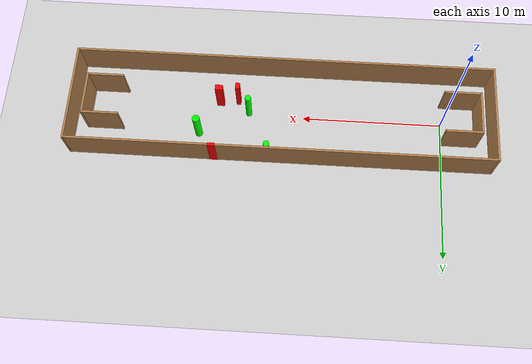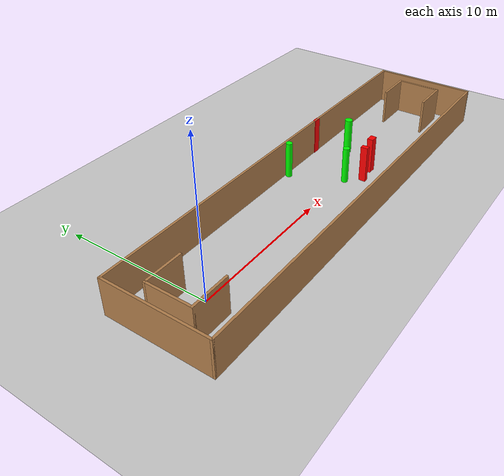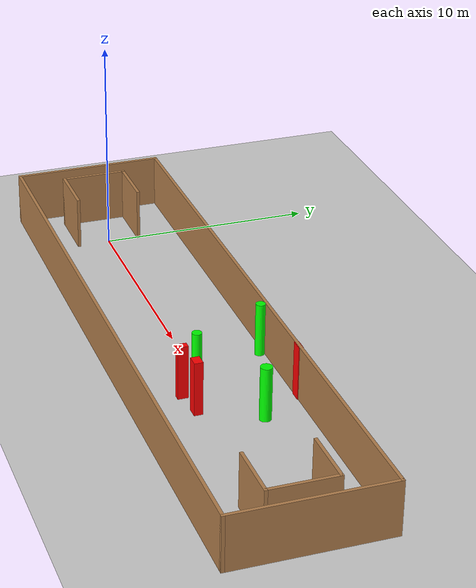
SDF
<sdf version="1.7">
 <world name="default">
  <light name="sun" type="directional">
   <pose>0 0 10 0 -0 0</pose>
   <diffuse>0.8 0.8 0.8 1</diffuse>
   <specular>0.2 0.2 0.2 1</specular>
   <attenuation>
    <range>1000</range>
    <constant>0.9</constant>
    <linear>0.01</linear>
    <quadratic>0.001</quadratic>
   </attenuation>
   <direction>-0.5 0.1 -0.9</direction>
   <spot><inner_angle>0</inner_angle><outer_angle>0</outer_angle><falloff>0</falloff></spot>
  </light>
  <model name="ground_plane">
   <static>1</static>
   <link name="link">
    <collision name="collision">
     <geometry><plane><normal>0 0 1</normal><size>100 100</size></plane></geometry>
     <surface>
      <contact><collide_bitmask>65535</collide_bitmask></contact>
      <friction><ode><mu>100</mu><mu2>50</mu2></ode></friction>
     </surface>
    </collision>
    <visual name="visual">
     <cast_shadows>0</cast_shadows>
     <geometry><plane><normal>0 0 1</normal><size>100 100</size></plane></geometry>
     <material>
      <script><uri>file://media/materials/scripts/gazebo.material</uri><name>Gazebo/Grey</name></script>
     </material>
    </visual>
   </link>
  </model>
  <gravity>0 0 -9.8</gravity>
  <magnetic_field>6e-06 2.3e-05 -4.2e-05</magnetic_field>
  <atmosphere type="adiabatic"/>
  <physics type="ode">
   <max_step_size>0.001</max_step_size>
   <real_time_factor>1</real_time_factor>
   <real_time_update_rate>1000</real_time_update_rate>
  </physics>
  <scene><ambient>0.4 0.4 0.4 1</ambient><background>0.7 0.7 0.7 1</background><shadows>1</shadows></scene>
  <spherical_coordinates>
   <surface_model>EARTH_WGS84</surface_model>
   <latitude_deg>0</latitude_deg>
   <longitude_deg>0</longitude_deg>
   <elevation>0</elevation>
   <heading_deg>0</heading_deg>
  </spherical_coordinates>
  <model name="my_base_walls">
   <link name="Wall_0">
    <collision name="Wall_0_Collision">
     <geometry><box><size>7.15 0.15 2.5</size></box></geometry>
     <pose>0 0 1.25 0 -0 0</pose>
    </collision>
    <visual name="Wall_0_Visual">
     <pose>0 0 1.25 0 -0 0</pose>
     <geometry><box><size>7.15 0.15 2.5</size></box></geometry>
     <material>
      <script><uri>file://media/materials/scripts/gazebo.material</uri><name>Gazebo/Wood</name></script>
      <ambient>1 1 1 1</ambient>
     </material>
     <meta><layer>0</layer></meta>
    </visual>
    <pose>-15 0 0 0 -0 1.5708</pose>
   </link>
   <link name="Wall_10">
    <collision name="Wall_10_Collision">
     <geometry><box><size>2.65 0.15 2.5</size></box></geometry>
     <pose>0 0 1.25 0 -0 0</pose>
    </collision>
    <visual name="Wall_10_Visual">
     <pose>0 0 1.25 0 -0 0</pose>
     <geometry><box><size>2.65 0.15 2.5</size></box></geometry>
     <material>
      <script><uri>file://media/materials/scripts/gazebo.material</uri><name>Gazebo/Wood</name></script>
      <ambient>1 1 1 1</ambient>
     </material>
     <meta><layer>0</layer></meta>
    </visual>
    <pose>-12.75 -1.5 0 0 -0 0</pose>
   </link>
   <link name="Wall_12">
    <collision name="Wall_12_Collision">
     <geometry><box><size>2.65 0.15 2.5</size></box></geometry>
     <pose>0 0 1.25 0 -0 0</pose>
    </collision>
    <visual name="Wall_12_Visual">
     <pose>0 0 1.25 0 -0 0</pose>
     <geometry><box><size>2.65 0.15 2.5</size></box></geometry>
     <material>
      <script><uri>file://media/materials/scripts/gazebo.material</uri><name>Gazebo/Wood</name></script>
      <ambient>1 1 1 1</ambient>
     </material>
     <meta><layer>0</layer></meta>
    </visual>
    <pose>-12.75 1.5 0 0 -0 0</pose>
   </link>
   <link name="Wall_14">
    <collision name="Wall_14_Collision">
     <geometry><box><size>3.15 0.15 2.5</size></box></geometry>
     <pose>0 0 1.25 0 -0 0</pose>
    </collision>
    <visual name="Wall_14_Visual">
     <pose>0 0 1.25 0 -0 0</pose>
     <geometry><box><size>3.15 0.15 2.5</size></box></geometry>
     <material>
      <script><uri>file://media/materials/scripts/gazebo.material</uri><name>Gazebo/Wood</name></script>
      <ambient>1 1 1 1</ambient>
     </material>
     <meta><layer>0</layer></meta>
    </visual>
    <pose>14 0 0 0 -0 -1.5708</pose>
   </link>
   <link name="Wall_15">
    <collision name="Wall_15_Collision">
     <geometry><box><size>2.65 0.15 2.5</size></box></geometry>
     <pose>0 0 1.25 0 -0 0</pose>
    </collision>
    <visual name="Wall_15_Visual">
     <pose>0 0 1.25 0 -0 0</pose>
     <geometry><box><size>2.65 0.15 2.5</size></box></geometry>
     <material>
      <script><uri>file://media/materials/scripts/gazebo.material</uri><name>Gazebo/Wood</name></script>
      <ambient>1 1 1 1</ambient>
     </material>
     <meta><layer>0</layer></meta>
    </visual>
    <pose>12.75 -1.5 0 0 -0 3.14159</pose>
   </link>
   <link name="Wall_17">
    <collision name="Wall_17_Collision">
     <geometry><box><size>2.65 0.15 2.5</size></box></geometry>
     <pose>0 0 1.25 0 -0 0</pose>
    </collision>
    <visual name="Wall_17_Visual">
     <pose>0 0 1.25 0 -0 0</pose>
     <geometry><box><size>2.65 0.15 2.5</size></box></geometry>
     <material>
      <script><uri>file://media/materials/scripts/gazebo.material</uri><name>Gazebo/Wood</name></script>
      <ambient>1 1 1 1</ambient>
     </material>
     <meta><layer>0</layer></meta>
    </visual>
    <pose>12.75 1.5 0 0 -0 3.14159</pose>
   </link>
   <link name="Wall_2">
    <collision name="Wall_2_Collision">
     <geometry><box><size>30.15 0.15 2.5</size></box></geometry>
     <pose>0 0 1.25 0 -0 0</pose>
    </collision>
    <visual name="Wall_2_Visual">
     <pose>0 0 1.25 0 -0 0</pose>
     <geometry><box><size>30.15 0.15 2.5</size></box></geometry>
     <material>
      <script><uri>file://media/materials/scripts/gazebo.material</uri><name>Gazebo/Wood</name></script>
      <ambient>1 1 1 1</ambient>
     </material>
     <meta><layer>0</layer></meta>
    </visual>
    <pose>-0 -3.5 0 0 -0 0</pose>
   </link>
   <link name="Wall_4">
    <collision name="Wall_4_Collision">
     <geometry><box><size>30.15 0.15 2.5</size></box></geometry>
     <pose>0 0 1.25 0 -0 0</pose>
    </collision>
    <visual name="Wall_4_Visual">
     <pose>0 0 1.25 0 -0 0</pose>
     <geometry><box><size>30.15 0.15 2.5</size></box></geometry>
     <material>
      <script><uri>file://media/materials/scripts/gazebo.material</uri><name>Gazebo/Wood</name></script>
      <ambient>1 1 1 1</ambient>
     </material>
     <meta><layer>0</layer></meta>
    </visual>
    <pose>-0 3.5 0 0 -0 0</pose>
   </link>
   <link name="Wall_6">
    <collision name="Wall_6_Collision">
     <geometry><box><size>7.15 0.15 2.5</size></box></geometry>
     <pose>0 0 1.25 0 -0 0</pose>
    </collision>
    <visual name="Wall_6_Visual">
     <pose>0 0 1.25 0 -0 0</pose>
     <geometry><box><size>7.15 0.15 2.5</size></box></geometry>
     <material>
      <script><uri>file://media/materials/scripts/gazebo.material</uri><name>Gazebo/Wood</name></script>
      <ambient>1 1 1 1</ambient>
     </material>
     <meta><layer>0</layer></meta>
    </visual>
    <pose>15 0 0 0 -0 -1.5708</pose>
   </link>
   <link name="Wall_9">
    <collision name="Wall_9_Collision">
     <geometry><box><size>3.15 0.15 2.5</size></box></geometry>
     <pose>0 0 1.25 0 -0 0</pose>
    </collision>
    <visual name="Wall_9_Visual">
     <pose>0 0 1.25 0 -0 0</pose>
     <geometry><box><size>3.15 0.15 2.5</size></box></geometry>
     <material>
      <script><uri>file://media/materials/scripts/gazebo.material</uri><name>Gazebo/Wood</name></script>
      <ambient>1 1 1 1</ambient>
     </material>
     <meta><layer>0</layer></meta>
    </visual>
    <pose>-14 0 0 0 -0 -1.5708</pose>
   </link>
   <static>1</static>
   <pose>11.5 0 0 0 -0 0</pose>
  </model>
  <model name="cylinder1">
   <static>1</static>
   <link name="link">
    <inertial>
     <mass>1</mass>
     <inertia><ixx>0.5</ixx><ixy>0</ixy><ixz>0</ixz><iyy>0.5</iyy><iyz>0</iyz><izz>1</izz></inertia>
    </inertial>
    <collision name="collision">
     <geometry><cylinder><radius>0.2191075418159275</radius><length>2.5</length></cylinder></geometry>
    </collision>
    <visual name="visual">
     <geometry><cylinder><radius>0.2191075418159275</radius><length>2.5</length></cylinder></geometry>
     <material>
      <ambient>0 1 0 1</ambient>
      <diffuse>0 1 0 1</diffuse>
      <specular>0.1 0.1 0.1 1</specular>
      <emissive>0 0 0 0</emissive>
     </material>
    </visual>
   </link>
   <pose>13.939356982473813 -0.19408033255316148 1.25 0 0 0</pose>
  </model>
  <model name="cylinder2">
   <static>1</static>
   <link name="link">
    <inertial>
     <mass>1</mass>
     <inertia><ixx>0.5</ixx><ixy>0</ixy><ixz>0</ixz><iyy>0.5</iyy><iyz>0</iyz><izz>1</izz></inertia>
    </inertial>
    <collision name="collision">
     <geometry><cylinder><radius>0.26392177466083716</radius><length>2.5</length></cylinder></geometry>
    </collision>
    <visual name="visual">
     <geometry><cylinder><radius>0.26392177466083716</radius><length>2.5</length></cylinder></geometry>
     <material>
      <ambient>0 1 0 1</ambient>
      <diffuse>0 1 0 1</diffuse>
      <specular>0.1 0.1 0.1 1</specular>
      <emissive>0 0 0 0</emissive>
     </material>
    </visual>
   </link>
   <pose>17.443744702581164 1.5963434678815016 1.25 0 0 0</pose>
  </model>
  <model name="cylinder3">
   <static>1</static>
   <link name="link">
    <inertial>
     <mass>1</mass>
     <inertia><ixx>0.5</ixx><ixy>0</ixy><ixz>0</ixz><iyy>0.5</iyy><iyz>0</iyz><izz>1</izz></inertia>
    </inertial>
    <collision name="collision">
     <geometry><cylinder><radius>0.21733999804706733</radius><length>2.5</length></cylinder></geometry>
    </collision>
    <visual name="visual">
     <geometry><cylinder><radius>0.21733999804706733</radius><length>2.5</length></cylinder></geometry>
     <material>
      <ambient>0 1 0 1</ambient>
      <diffuse>0 1 0 1</diffuse>
      <specular>0.1 0.1 0.1 1</specular>
      <emissive>0 0 0 0</emissive>
     </material>
    </visual>
   </link>
   <pose>12.430761402980881 3.2206439287029243 1.25 0 0 0</pose>
  </model>
  <model name="box1">
   <static>1</static>
   <link name="link">
    <inertial>
     <mass>1</mass>
     <inertia><ixx>0.083</ixx><ixy>0</ixy><ixz>0</ixz><iyy>0.083</iyy><iyz>0</iyz><izz>0.083</izz></inertia>
    </inertial>
    <collision name="collision">
     <geometry><box><size>0.3026601577093541 0.46841943976680706 2.5</size></box></geometry>
    </collision>
    <visual name="visual">
     <geometry><box><size>0.3026601577093541 0.46841943976680706 2.5</size></box></geometry>
     <material>
      <ambient>1 0 0 1</ambient>
      <diffuse>1 0 0 1</diffuse>
      <specular>0.1 0.1 0.1 1</specular>
      <emissive>0 0 0 0</emissive>
     </material>
    </visual>
    <sensor name="my_contact" type="contact">
     <contact><collision>box_collision</collision><topic>__default_topic__</topic></contact>
    </sensor>
   </link>
   <pose>14.749215154024457 -1.118727666341242 1.25 0 0 0</pose>
  </model>
  <model name="box2">
   <static>1</static>
   <link name="link">
    <inertial>
     <mass>1</mass>
     <inertia><ixx>0.083</ixx><ixy>0</ixy><ixz>0</ixz><iyy>0.083</iyy><iyz>0</iyz><izz>0.083</izz></inertia>
    </inertial>
    <collision name="collision">
     <geometry><box><size>0.5429788799799133 0.20503703843331034 2.5</size></box></geometry>
    </collision>
    <visual name="visual">
     <geometry><box><size>0.5429788799799133 0.20503703843331034 2.5</size></box></geometry>
     <material>
      <ambient>1 0 0 1</ambient>
      <diffuse>1 0 0 1</diffuse>
      <specular>0.1 0.1 0.1 1</specular>
      <emissive>0 0 0 0</emissive>
     </material>
    </visual>
    <sensor name="my_contact" type="contact">
     <contact><collision>box_collision</collision><topic>__default_topic__</topic></contact>
    </sensor>
   </link>
   <pose>16.207386428558973 3.490016939986794 1.25 0 0 0</pose>
  </model>
  <model name="box3">
   <static>1</static>
   <link name="link">
    <inertial>
     <mass>1</mass>
     <inertia><ixx>0.083</ixx><ixy>0</ixy><ixz>0</ixz><iyy>0.083</iyy><iyz>0</iyz><izz>0.083</izz></inertia>
    </inertial>
    <collision name="collision">
     <geometry><box><size>0.5294114336308032 0.39356694716705215 2.5</size></box></geometry>
    </collision>
    <visual name="visual">
     <geometry><box><size>0.5294114336308032 0.39356694716705215 2.5</size></box></geometry>
     <material>
      <ambient>1 0 0 1</ambient>
      <diffuse>1 0 0 1</diffuse>
      <specular>0.1 0.1 0.1 1</specular>
      <emissive>0 0 0 0</emissive>
     </material>
    </visual>
    <sensor name="my_contact" type="contact">
     <contact><collision>box_collision</collision><topic>__default_topic__</topic></contact>
    </sensor>
   </link>
   <pose>16.05988983411404 -0.9181243359964566 1.25 0 0 0</pose>
  </model>
 </world>
</sdf>
